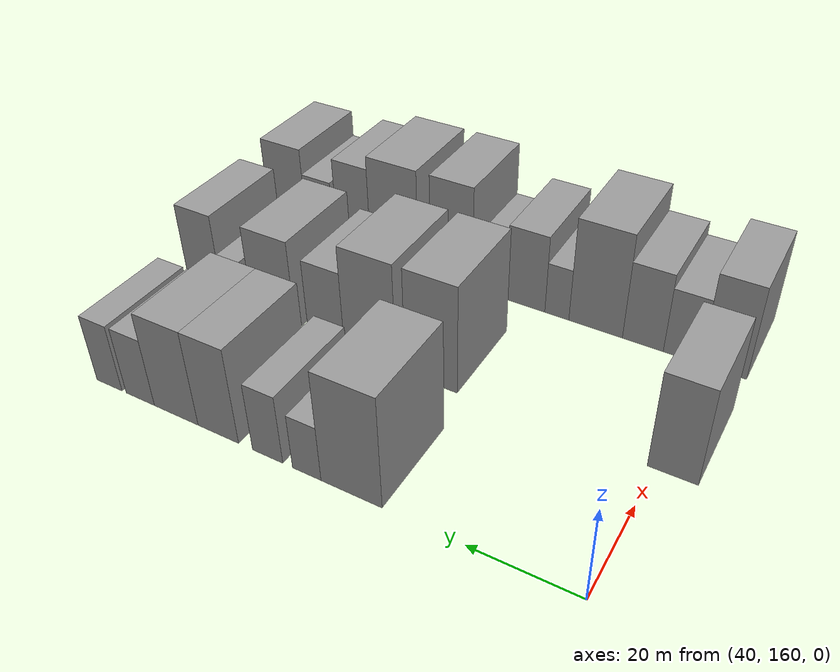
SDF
<sdf version="1.6">
 <world name="default">
  <model name="building_50">
   <static>1</static>
   <pose>50.0000 200.9176 0 0.000000 0.000000 0.000000</pose>
   <link name="link">
    <pose>0 0 12.00 0 0 0</pose>
    <collision name="collision"><geometry><box><size>20.0000 11.8130 24.0000</size></box></geometry></collision>
    <visual name="visual">
     <cast_shadows>0</cast_shadows>
     <geometry><box><size>20.0000 11.8130 24.0000</size></box></geometry>
     <material>
      <script>
       <uri>model://grey_wall/materials/scripts</uri>
       <uri>model://grey_wall/materials/textures</uri>
       <name>vrc/grey_wall</name>
      </script>
     </material>
    </visual>
   </link>
  </model>
  <model name="building_51">
   <static>1</static>
   <pose>50.0000 209.6882 0 0.000000 0.000000 0.000000</pose>
   <link name="link">
    <pose>0 0 6.00 0 0 0</pose>
    <collision name="collision"><geometry><box><size>20.0000 5.7282 12.0000</size></box></geometry></collision>
    <visual name="visual">
     <cast_shadows>0</cast_shadows>
     <geometry><box><size>20.0000 5.7282 12.0000</size></box></geometry>
     <material>
      <script>
       <uri>model://grey_wall/materials/scripts</uri>
       <uri>model://grey_wall/materials/textures</uri>
       <name>vrc/grey_wall</name>
      </script>
     </material>
    </visual>
   </link>
  </model>
  <model name="building_52">
   <static>1</static>
   <pose>50.0000 217.7186 0 0.000000 0.000000 0.000000</pose>
   <link name="link">
    <pose>0 0 7.50 0 0 0</pose>
    <collision name="collision"><geometry><box><size>20.0000 6.3327 15.0000</size></box></geometry></collision>
    <visual name="visual">
     <cast_shadows>0</cast_shadows>
     <geometry><box><size>20.0000 6.3327 15.0000</size></box></geometry>
     <material>
      <script>
       <uri>model://grey_wall/materials/scripts</uri>
       <uri>model://grey_wall/materials/textures</uri>
       <name>vrc/grey_wall</name>
      </script>
     </material>
    </visual>
   </link>
  </model>
  <model name="building_53">
   <static>1</static>
   <pose>50.0000 228.3293 0 0.000000 0.000000 0.000000</pose>
   <link name="link">
    <pose>0 0 10.50 0 0 0</pose>
    <collision name="collision"><geometry><box><size>20.0000 8.8886 21.0000</size></box></geometry></collision>
    <visual name="visual">
     <cast_shadows>0</cast_shadows>
     <geometry><box><size>20.0000 8.8886 21.0000</size></box></geometry>
     <material>
      <script>
       <uri>model://grey_wall/materials/scripts</uri>
       <uri>model://grey_wall/materials/textures</uri>
       <name>vrc/grey_wall</name>
      </script>
     </material>
    </visual>
   </link>
  </model>
  <model name="building_54">
   <static>1</static>
   <pose>50.0000 237.7962 0 0.000000 0.000000 0.000000</pose>
   <link name="link">
    <pose>0 0 10.50 0 0 0</pose>
    <collision name="collision"><geometry><box><size>20.0000 10.0452 21.0000</size></box></geometry></collision>
    <visual name="visual">
     <cast_shadows>0</cast_shadows>
     <geometry><box><size>20.0000 10.0452 21.0000</size></box></geometry>
     <material>
      <script>
       <uri>model://grey_wall/materials/scripts</uri>
       <uri>model://grey_wall/materials/textures</uri>
       <name>vrc/grey_wall</name>
      </script>
     </material>
    </visual>
   </link>
  </model>
  <model name="building_55">
   <static>1</static>
   <pose>50.0000 246.1873 0 0.000000 0.000000 0.000000</pose>
   <link name="link">
    <pose>0 0 7.50 0 0 0</pose>
    <collision name="collision"><geometry><box><size>20.0000 6.7370 15.0000</size></box></geometry></collision>
    <visual name="visual">
     <cast_shadows>0</cast_shadows>
     <geometry><box><size>20.0000 6.7370 15.0000</size></box></geometry>
     <material>
      <script>
       <uri>model://grey_wall/materials/scripts</uri>
       <uri>model://grey_wall/materials/textures</uri>
       <name>vrc/grey_wall</name>
      </script>
     </material>
    </visual>
   </link>
  </model>
  <model name="building_56">
   <static>1</static>
   <pose>50.0000 253.6301 0 0.000000 0.000000 0.000000</pose>
   <link name="link">
    <pose>0 0 7.50 0 0 0</pose>
    <collision name="collision"><geometry><box><size>20.0000 6.1486 15.0000</size></box></geometry></collision>
    <visual name="visual">
     <cast_shadows>0</cast_shadows>
     <geometry><box><size>20.0000 6.1486 15.0000</size></box></geometry>
     <material>
      <script>
       <uri>model://grey_wall/materials/scripts</uri>
       <uri>model://grey_wall/materials/textures</uri>
       <name>vrc/grey_wall</name>
      </script>
     </material>
    </visual>
   </link>
  </model>
  <model name="building_121">
   <static>1</static>
   <pose>79.0000 156.9021 0 0.000000 0.000000 0.000000</pose>
   <link name="link">
    <pose>0 0 10.50 0 0 0</pose>
    <collision name="collision"><geometry><box><size>20.0000 8.7720 21.0000</size></box></geometry></collision>
    <visual name="visual">
     <cast_shadows>0</cast_shadows>
     <geometry><box><size>20.0000 8.7720 21.0000</size></box></geometry>
     <material>
      <script>
       <uri>model://grey_wall/materials/scripts</uri>
       <uri>model://grey_wall/materials/textures</uri>
       <name>vrc/grey_wall</name>
      </script>
     </material>
    </visual>
   </link>
  </model>
  <model name="building_122">
   <static>1</static>
   <pose>79.0000 202.7490 0 0.000000 0.000000 0.000000</pose>
   <link name="link">
    <pose>0 0 12.00 0 0 0</pose>
    <collision name="collision"><geometry><box><size>20.0000 10.9740 24.0000</size></box></geometry></collision>
    <visual name="visual">
     <cast_shadows>0</cast_shadows>
     <geometry><box><size>20.0000 10.9740 24.0000</size></box></geometry>
     <material>
      <script>
       <uri>model://grey_wall/materials/scripts</uri>
       <uri>model://grey_wall/materials/textures</uri>
       <name>vrc/grey_wall</name>
      </script>
     </material>
    </visual>
   </link>
  </model>
  <model name="building_123">
   <static>1</static>
   <pose>79.0000 215.9618 0 0.000000 0.000000 0.000000</pose>
   <link name="link">
    <pose>0 0 12.00 0 0 0</pose>
    <collision name="collision"><geometry><box><size>20.0000 11.4517 24.0000</size></box></geometry></collision>
    <visual name="visual">
     <cast_shadows>0</cast_shadows>
     <geometry><box><size>20.0000 11.4517 24.0000</size></box></geometry>
     <material>
      <script>
       <uri>model://grey_wall/materials/scripts</uri>
       <uri>model://grey_wall/materials/textures</uri>
       <name>vrc/grey_wall</name>
      </script>
     </material>
    </visual>
   </link>
  </model>
  <model name="building_124">
   <static>1</static>
   <pose>79.0000 225.8504 0 0.000000 0.000000 0.000000</pose>
   <link name="link">
    <pose>0 0 9.00 0 0 0</pose>
    <collision name="collision"><geometry><box><size>20.0000 8.3255 18.0000</size></box></geometry></collision>
    <visual name="visual">
     <cast_shadows>0</cast_shadows>
     <geometry><box><size>20.0000 8.3255 18.0000</size></box></geometry>
     <material>
      <script>
       <uri>model://grey_wall/materials/scripts</uri>
       <uri>model://grey_wall/materials/textures</uri>
       <name>vrc/grey_wall</name>
      </script>
     </material>
    </visual>
   </link>
  </model>
  <model name="building_125">
   <static>1</static>
   <pose>79.0000 238.2356 0 0.000000 0.000000 0.000000</pose>
   <link name="link">
    <pose>0 0 10.50 0 0 0</pose>
    <collision name="collision"><geometry><box><size>20.0000 10.4449 21.0000</size></box></geometry></collision>
    <visual name="visual">
     <cast_shadows>0</cast_shadows>
     <geometry><box><size>20.0000 10.4449 21.0000</size></box></geometry>
     <material>
      <script>
       <uri>model://grey_wall/materials/scripts</uri>
       <uri>model://grey_wall/materials/textures</uri>
       <name>vrc/grey_wall</name>
      </script>
     </material>
    </visual>
   </link>
  </model>
  <model name="building_126">
   <static>1</static>
   <pose>79.0000 248.1817 0 0.000000 0.000000 0.000000</pose>
   <link name="link">
    <pose>0 0 6.00 0 0 0</pose>
    <collision name="collision"><geometry><box><size>20.0000 5.4472 12.0000</size></box></geometry></collision>
    <visual name="visual">
     <cast_shadows>0</cast_shadows>
     <geometry><box><size>20.0000 5.4472 12.0000</size></box></geometry>
     <material>
      <script>
       <uri>model://grey_wall/materials/scripts</uri>
       <uri>model://grey_wall/materials/textures</uri>
       <name>vrc/grey_wall</name>
      </script>
     </material>
    </visual>
   </link>
  </model>
  <model name="building_127">
   <static>1</static>
   <pose>79.0000 255.1969 0 0.000000 0.000000 0.000000</pose>
   <link name="link">
    <pose>0 0 10.50 0 0 0</pose>
    <collision name="collision"><geometry><box><size>20.0000 8.5832 21.0000</size></box></geometry></collision>
    <visual name="visual">
     <cast_shadows>0</cast_shadows>
     <geometry><box><size>20.0000 8.5832 21.0000</size></box></geometry>
     <material>
      <script>
       <uri>model://grey_wall/materials/scripts</uri>
       <uri>model://grey_wall/materials/textures</uri>
       <name>vrc/grey_wall</name>
      </script>
     </material>
    </visual>
   </link>
  </model>
  <model name="building_190">
   <static>1</static>
   <pose>108.0000 156.9193 0 0.000000 0.000000 0.000000</pose>
   <link name="link">
    <pose>0 0 10.50 0 0 0</pose>
    <collision name="collision"><geometry><box><size>20.0000 8.6410 21.0000</size></box></geometry></collision>
    <visual name="visual">
     <cast_shadows>0</cast_shadows>
     <geometry><box><size>20.0000 8.6410 21.0000</size></box></geometry>
     <material>
      <script>
       <uri>model://grey_wall/materials/scripts</uri>
       <uri>model://grey_wall/materials/textures</uri>
       <name>vrc/grey_wall</name>
      </script>
     </material>
    </visual>
   </link>
  </model>
  <model name="building_191">
   <static>1</static>
   <pose>108.0000 164.9016 0 0.000000 0.000000 0.000000</pose>
   <link name="link">
    <pose>0 0 7.50 0 0 0</pose>
    <collision name="collision"><geometry><box><size>20.0000 7.3235 15.0000</size></box></geometry></collision>
    <visual name="visual">
     <cast_shadows>0</cast_shadows>
     <geometry><box><size>20.0000 7.3235 15.0000</size></box></geometry>
     <material>
      <script>
       <uri>model://grey_wall/materials/scripts</uri>
       <uri>model://grey_wall/materials/textures</uri>
       <name>vrc/grey_wall</name>
      </script>
     </material>
    </visual>
   </link>
  </model>
  <model name="building_192">
   <static>1</static>
   <pose>108.0000 172.6764 0 0.000000 0.000000 0.000000</pose>
   <link name="link">
    <pose>0 0 9.00 0 0 0</pose>
    <collision name="collision"><geometry><box><size>20.0000 8.2261 18.0000</size></box></geometry></collision>
    <visual name="visual">
     <cast_shadows>0</cast_shadows>
     <geometry><box><size>20.0000 8.2261 18.0000</size></box></geometry>
     <material>
      <script>
       <uri>model://grey_wall/materials/scripts</uri>
       <uri>model://grey_wall/materials/textures</uri>
       <name>vrc/grey_wall</name>
      </script>
     </material>
    </visual>
   </link>
  </model>
  <model name="building_193">
   <static>1</static>
   <pose>108.0000 182.4041 0 0.000000 0.000000 0.000000</pose>
   <link name="link">
    <pose>0 0 12.00 0 0 0</pose>
    <collision name="collision"><geometry><box><size>20.0000 11.2294 24.0000</size></box></geometry></collision>
    <visual name="visual">
     <cast_shadows>0</cast_shadows>
     <geometry><box><size>20.0000 11.2294 24.0000</size></box></geometry>
     <material>
      <script>
       <uri>model://grey_wall/materials/scripts</uri>
       <uri>model://grey_wall/materials/textures</uri>
       <name>vrc/grey_wall</name>
      </script>
     </material>
    </visual>
   </link>
  </model>
  <model name="building_194">
   <static>1</static>
   <pose>108.0000 190.6174 0 0.000000 0.000000 0.000000</pose>
   <link name="link">
    <pose>0 0 6.00 0 0 0</pose>
    <collision name="collision"><geometry><box><size>20.0000 5.1972 12.0000</size></box></geometry></collision>
    <visual name="visual">
     <cast_shadows>0</cast_shadows>
     <geometry><box><size>20.0000 5.1972 12.0000</size></box></geometry>
     <material>
      <script>
       <uri>model://grey_wall/materials/scripts</uri>
       <uri>model://grey_wall/materials/textures</uri>
       <name>vrc/grey_wall</name>
      </script>
     </material>
    </visual>
   </link>
  </model>
  <model name="building_195">
   <static>1</static>
   <pose>108.0000 197.4819 0 0.000000 0.000000 0.000000</pose>
   <link name="link">
    <pose>0 0 9.00 0 0 0</pose>
    <collision name="collision"><geometry><box><size>20.0000 8.5320 18.0000</size></box></geometry></collision>
    <visual name="visual">
     <cast_shadows>0</cast_shadows>
     <geometry><box><size>20.0000 8.5320 18.0000</size></box></geometry>
     <material>
      <script>
       <uri>model://grey_wall/materials/scripts</uri>
       <uri>model://grey_wall/materials/textures</uri>
       <name>vrc/grey_wall</name>
      </script>
     </material>
    </visual>
   </link>
  </model>
  <model name="building_196">
   <static>1</static>
   <pose>108.0000 207.1658 0 0.000000 0.000000 0.000000</pose>
   <link name="link">
    <pose>0 0 6.00 0 0 0</pose>
    <collision name="collision"><geometry><box><size>20.0000 4.8358 12.0000</size></box></geometry></collision>
    <visual name="visual">
     <cast_shadows>0</cast_shadows>
     <geometry><box><size>20.0000 4.8358 12.0000</size></box></geometry>
     <material>
      <script>
       <uri>model://grey_wall/materials/scripts</uri>
       <uri>model://grey_wall/materials/textures</uri>
       <name>vrc/grey_wall</name>
      </script>
     </material>
    </visual>
   </link>
  </model>
  <model name="building_197">
   <static>1</static>
   <pose>108.0000 214.5688 0 0.000000 0.000000 0.000000</pose>
   <link name="link">
    <pose>0 0 12.00 0 0 0</pose>
    <collision name="collision"><geometry><box><size>20.0000 9.9702 24.0000</size></box></geometry></collision>
    <visual name="visual">
     <cast_shadows>0</cast_shadows>
     <geometry><box><size>20.0000 9.9702 24.0000</size></box></geometry>
     <material>
      <script>
       <uri>model://grey_wall/materials/scripts</uri>
       <uri>model://grey_wall/materials/textures</uri>
       <name>vrc/grey_wall</name>
      </script>
     </material>
    </visual>
   </link>
  </model>
  <model name="building_198">
   <static>1</static>
   <pose>108.0000 228.4556 0 0.000000 0.000000 0.000000</pose>
   <link name="link">
    <pose>0 0 12.00 0 0 0</pose>
    <collision name="collision"><geometry><box><size>20.0000 11.8033 24.0000</size></box></geometry></collision>
    <visual name="visual">
     <cast_shadows>0</cast_shadows>
     <geometry><box><size>20.0000 11.8033 24.0000</size></box></geometry>
     <material>
      <script>
       <uri>model://grey_wall/materials/scripts</uri>
       <uri>model://grey_wall/materials/textures</uri>
       <name>vrc/grey_wall</name>
      </script>
     </material>
    </visual>
   </link>
  </model>
  <model name="building_199">
   <static>1</static>
   <pose>108.0000 238.6269 0 0.000000 0.000000 0.000000</pose>
   <link name="link">
    <pose>0 0 10.50 0 0 0</pose>
    <collision name="collision"><geometry><box><size>20.0000 8.5393 21.0000</size></box></geometry></collision>
    <visual name="visual">
     <cast_shadows>0</cast_shadows>
     <geometry><box><size>20.0000 8.5393 21.0000</size></box></geometry>
     <material>
      <script>
       <uri>model://grey_wall/materials/scripts</uri>
       <uri>model://grey_wall/materials/textures</uri>
       <name>vrc/grey_wall</name>
      </script>
     </material>
    </visual>
   </link>
  </model>
  <model name="building_200">
   <static>1</static>
   <pose>108.0000 247.4996 0 0.000000 0.000000 0.000000</pose>
   <link name="link">
    <pose>0 0 7.50 0 0 0</pose>
    <collision name="collision"><geometry><box><size>20.0000 7.2062 15.0000</size></box></geometry></collision>
    <visual name="visual">
     <cast_shadows>0</cast_shadows>
     <geometry><box><size>20.0000 7.2062 15.0000</size></box></geometry>
     <material>
      <script>
       <uri>model://grey_wall/materials/scripts</uri>
       <uri>model://grey_wall/materials/textures</uri>
       <name>vrc/grey_wall</name>
      </script>
     </material>
    </visual>
   </link>
  </model>
  <model name="building_201">
   <static>1</static>
   <pose>108.0000 256.1762 0 0.000000 0.000000 0.000000</pose>
   <link name="link">
    <pose>0 0 10.50 0 0 0</pose>
    <collision name="collision"><geometry><box><size>20.0000 10.1469 21.0000</size></box></geometry></collision>
    <visual name="visual">
     <cast_shadows>0</cast_shadows>
     <geometry><box><size>20.0000 10.1469 21.0000</size></box></geometry>
     <material>
      <script>
       <uri>model://grey_wall/materials/scripts</uri>
       <uri>model://grey_wall/materials/textures</uri>
       <name>vrc/grey_wall</name>
      </script>
     </material>
    </visual>
   </link>
  </model>
 </world>
</sdf>
